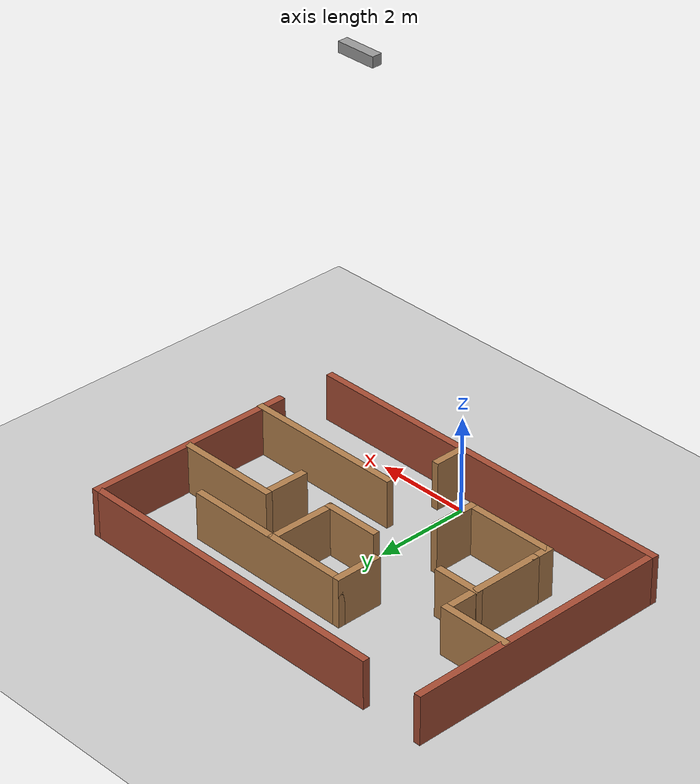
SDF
<sdf version="1.7">
 <world name="default">
  <light name="sun" type="directional">
   <pose>0 0 10 0 -0 0</pose>
   <diffuse>0.8 0.8 0.8 1</diffuse>
   <specular>0.2 0.2 0.2 1</specular>
   <attenuation>
    <range>1000</range>
    <constant>0.9</constant>
    <linear>0.01</linear>
    <quadratic>0.001</quadratic>
   </attenuation>
   <direction>-0.5 0.1 -0.9</direction>
   <spot><inner_angle>0</inner_angle><outer_angle>0</outer_angle><falloff>0</falloff></spot>
  </light>
  <model name="ground_plane">
   <static>1</static>
   <link name="link">
    <collision name="collision">
     <geometry><plane><normal>0 0 1</normal><size>100 100</size></plane></geometry>
     <surface><friction><ode><mu>100</mu><mu2>50</mu2></ode></friction></surface>
    </collision>
    <visual name="visual">
     <cast_shadows>0</cast_shadows>
     <geometry><plane><normal>0 0 1</normal><size>100 100</size></plane></geometry>
     <material>
      <script><uri>file://media/materials/scripts/gazebo.material</uri><name>Gazebo/Grey</name></script>
     </material>
    </visual>
   </link>
  </model>
  <gravity>0 0 -9.8</gravity>
  <magnetic_field>6e-06 2.3e-05 -4.2e-05</magnetic_field>
  <atmosphere type="adiabatic"/>
  <physics type="ode">
   <max_step_size>0.001</max_step_size>
   <real_time_factor>1</real_time_factor>
   <real_time_update_rate>1000</real_time_update_rate>
  </physics>
  <scene><ambient>0.4 0.4 0.4 1</ambient><background>0.7 0.7 0.7 1</background><shadows>1</shadows></scene>
  <audio><device>default</device></audio>
  <spherical_coordinates>
   <surface_model>EARTH_WGS84</surface_model>
   <latitude_deg>0</latitude_deg>
   <longitude_deg>0</longitude_deg>
   <elevation>0</elevation>
   <heading_deg>0</heading_deg>
  </spherical_coordinates>
  <model name="maze_world">
   <pose>-0.1335 2.402 0 0 -0 0</pose>
   <link name="Wall_0">
    <collision name="Wall_0_Collision">
     <geometry><box><size>8.25 0.15 1</size></box></geometry>
     <pose>0 0 0.5 0 -0 0</pose>
    </collision>
    <visual name="Wall_0_Visual">
     <pose>0 0 0.5 0 -0 0</pose>
     <geometry><box><size>8.25 0.15 1</size></box></geometry>
     <material>
      <script><uri>file://media/materials/scripts/gazebo.material</uri><name>Gazebo/Bricks</name></script>
      <ambient>1 1 1 1</ambient>
     </material>
     <meta><layer>0</layer></meta>
    </visual>
    <pose>-0.0465 -2.809 0 0 -0 0</pose>
   </link>
   <link name="Wall_10">
    <collision name="Wall_10_Collision">
     <geometry><box><size>1.5 0.15 1</size></box></geometry>
     <pose>0 0 0.5 0 -0 0</pose>
    </collision>
    <visual name="Wall_10_Visual">
     <pose>0 0 0.5 0 -0 0</pose>
     <geometry><box><size>1.5 0.15 1</size></box></geometry>
     <material>
      <script><uri>file://media/materials/scripts/gazebo.material</uri><name>Gazebo/Wood</name></script>
      <ambient>1 1 1 1</ambient>
     </material>
     <meta><layer>0</layer></meta>
    </visual>
    <pose>-3.3945 0.819 0 0 -0 0</pose>
   </link>
   <link name="Wall_11">
    <collision name="Wall_11_Collision">
     <geometry><box><size>2.25 0.15 1</size></box></geometry>
     <pose>0 0 0.5 0 -0 0</pose>
    </collision>
    <visual name="Wall_11_Visual">
     <pose>0 0 0.5 0 -0 0</pose>
     <geometry><box><size>2.25 0.15 1</size></box></geometry>
     <material>
      <script><uri>file://media/materials/scripts/gazebo.material</uri><name>Gazebo/Wood</name></script>
      <ambient>1 1 1 1</ambient>
     </material>
     <meta><layer>0</layer></meta>
    </visual>
    <pose>-2.7195 -0.231 0 0 -0 -1.5708</pose>
   </link>
   <link name="Wall_12">
    <collision name="Wall_12_Collision">
     <geometry><box><size>0.5 0.15 1</size></box></geometry>
     <pose>0 0 0.5 0 -0 0</pose>
    </collision>
    <visual name="Wall_12_Visual">
     <pose>0 0 0.5 0 -0 0</pose>
     <geometry><box><size>0.5 0.15 1</size></box></geometry>
     <material>
      <script><uri>file://media/materials/scripts/gazebo.material</uri><name>Gazebo/Wood</name></script>
      <ambient>1 1 1 1</ambient>
     </material>
     <meta><layer>0</layer></meta>
    </visual>
    <pose>-2.7195 -1.456 0 0 -0 -1.5708</pose>
   </link>
   <link name="Wall_13">
    <collision name="Wall_13_Collision">
     <geometry><box><size>2 0.15 1</size></box></geometry>
     <pose>0 0 0.5 0 -0 0</pose>
    </collision>
    <visual name="Wall_13_Visual">
     <pose>0 0 0.5 0 -0 0</pose>
     <geometry><box><size>2 0.15 1</size></box></geometry>
     <material>
      <script><uri>file://media/materials/scripts/gazebo.material</uri><name>Gazebo/Wood</name></script>
      <ambient>1 1 1 1</ambient>
     </material>
     <meta><layer>0</layer></meta>
    </visual>
    <pose>-1.7945 -1.631 0 0 -0 0</pose>
   </link>
   <link name="Wall_14">
    <collision name="Wall_14_Collision">
     <geometry><box><size>1 0.15 1</size></box></geometry>
     <pose>0 0 0.5 0 -0 0</pose>
    </collision>
    <visual name="Wall_14_Visual">
     <pose>0 0 0.5 0 -0 0</pose>
     <geometry><box><size>1 0.15 1</size></box></geometry>
     <material>
      <script><uri>file://media/materials/scripts/gazebo.material</uri><name>Gazebo/Wood</name></script>
      <ambient>1 1 1 1</ambient>
     </material>
     <meta><layer>0</layer></meta>
    </visual>
    <pose>-0.8695 -1.206 0 0 -0 1.5708</pose>
   </link>
   <link name="Wall_16">
    <collision name="Wall_16_Collision">
     <geometry><box><size>1.00048 0.15 1</size></box></geometry>
     <pose>0 0 0.5 0 -0 0</pose>
    </collision>
    <visual name="Wall_16_Visual">
     <pose>0 0 0.5 0 -0 0</pose>
     <geometry><box><size>1.00048 0.15 1</size></box></geometry>
     <material>
      <script><uri>file://media/materials/scripts/gazebo.material</uri><name>Gazebo/Wood</name></script>
      <ambient>1 1 1 1</ambient>
     </material>
     <meta><layer>0</layer></meta>
    </visual>
    <pose>-0.8455 1.135 0 0 -0 -1.5708</pose>
   </link>
   <link name="Wall_18">
    <collision name="Wall_18_Collision">
     <geometry><box><size>1 0.15 1</size></box></geometry>
     <pose>0 0 0.5 0 -0 0</pose>
    </collision>
    <visual name="Wall_18_Visual">
     <pose>0 0 0.5 0 -0 0</pose>
     <geometry><box><size>1 0.15 1</size></box></geometry>
     <material>
      <script><uri>file://media/materials/scripts/gazebo.material</uri><name>Gazebo/Wood</name></script>
      <ambient>1 1 1 1</ambient>
     </material>
     <meta><layer>0</layer></meta>
    </visual>
    <pose>-2.3025 0.125 0 0 -0 0</pose>
   </link>
   <link name="Wall_21">
    <collision name="Wall_21_Collision">
     <geometry><box><size>1.5 0.15 1</size></box></geometry>
     <pose>0 0 0.5 0 -0 0</pose>
    </collision>
    <visual name="Wall_21_Visual">
     <pose>0 0 0.5 0 -0 0</pose>
     <geometry><box><size>1.5 0.15 1</size></box></geometry>
     <material>
      <script><uri>file://media/materials/scripts/gazebo.material</uri><name>Gazebo/Wood</name></script>
      <ambient>1 1 1 1</ambient>
     </material>
     <meta><layer>0</layer></meta>
    </visual>
    <pose>0.8345 0.861 0 0 -0 -1.5708</pose>
   </link>
   <link name="Wall_22">
    <collision name="Wall_22_Collision">
     <geometry><box><size>1.25 0.15 1</size></box></geometry>
     <pose>0 0 0.5 0 -0 0</pose>
    </collision>
    <visual name="Wall_22_Visual">
     <pose>0 0 0.5 0 -0 0</pose>
     <geometry><box><size>1.25 0.15 1</size></box></geometry>
     <material>
      <script><uri>file://media/materials/scripts/gazebo.material</uri><name>Gazebo/Wood</name></script>
      <ambient>1 1 1 1</ambient>
     </material>
     <meta><layer>0</layer></meta>
    </visual>
    <pose>0.2845 0.186 0 0 -0 3.14159</pose>
   </link>
   <link name="Wall_24">
    <collision name="Wall_24_Collision">
     <geometry><box><size>3.5 0.15 1</size></box></geometry>
     <pose>0 0 0.5 0 -0 0</pose>
    </collision>
    <visual name="Wall_24_Visual">
     <pose>0 0 0.5 0 -0 0</pose>
     <geometry><box><size>3.5 0.15 1</size></box></geometry>
     <material>
      <script><uri>file://media/materials/scripts/gazebo.material</uri><name>Gazebo/Wood</name></script>
      <ambient>1 1 1 1</ambient>
     </material>
     <meta><layer>0</layer></meta>
    </visual>
    <pose>2.4215 -1.124 0 0 -0 3.14159</pose>
   </link>
   <link name="Wall_26">
    <collision name="Wall_26_Collision">
     <geometry><box><size>2.25 0.15 1</size></box></geometry>
     <pose>0 0 0.5 0 -0 0</pose>
    </collision>
    <visual name="Wall_26_Visual">
     <pose>0 0 0.5 0 -0 0</pose>
     <geometry><box><size>2.25 0.15 1</size></box></geometry>
     <material>
      <script><uri>file://media/materials/scripts/gazebo.material</uri><name>Gazebo/Wood</name></script>
      <ambient>1 1 1 1</ambient>
     </material>
     <meta><layer>0</layer></meta>
    </visual>
    <pose>2.9995 0.704 0 0 -0 3.14159</pose>
   </link>
   <link name="Wall_27">
    <collision name="Wall_27_Collision">
     <geometry><box><size>1 0.15 1</size></box></geometry>
     <pose>0 0 0.5 0 -0 0</pose>
    </collision>
    <visual name="Wall_27_Visual">
     <pose>0 0 0.5 0 -0 0</pose>
     <geometry><box><size>1 0.15 1</size></box></geometry>
     <material>
      <script><uri>file://media/materials/scripts/gazebo.material</uri><name>Gazebo/Wood</name></script>
      <ambient>1 1 1 1</ambient>
     </material>
     <meta><layer>0</layer></meta>
    </visual>
    <pose>1.9495 0.279 0 0 -0 -1.5708</pose>
   </link>
   <link name="Wall_29">
    <collision name="Wall_29_Collision">
     <geometry><box><size>0.75 0.15 1</size></box></geometry>
     <pose>0 0 0.5 0 -0 0</pose>
    </collision>
    <visual name="Wall_29_Visual">
     <pose>0 0 0.5 0 -0 0</pose>
     <geometry><box><size>0.75 0.15 1</size></box></geometry>
     <material>
      <script><uri>file://media/materials/scripts/gazebo.material</uri><name>Gazebo/Wood</name></script>
      <ambient>1 1 1 1</ambient>
     </material>
     <meta><layer>0</layer></meta>
    </visual>
    <pose>0.5335 -2.489 0 0 -0 1.5708</pose>
   </link>
   <link name="Wall_3">
    <collision name="Wall_3_Collision">
     <geometry><box><size>5.75 0.15 1</size></box></geometry>
     <pose>0 0 0.5 0 -0 0</pose>
    </collision>
    <visual name="Wall_3_Visual">
     <pose>0 0 0.5 0 -0 0</pose>
     <geometry><box><size>5.75 0.15 1</size></box></geometry>
     <material>
      <script><uri>file://media/materials/scripts/gazebo.material</uri><name>Gazebo/Bricks</name></script>
      <ambient>1 1 1 1</ambient>
     </material>
     <meta><layer>0</layer></meta>
    </visual>
    <pose>-4.0965 -0.009 0 0 -0 1.5708</pose>
   </link>
   <link name="Wall_5">
    <collision name="Wall_5_Collision">
     <geometry><box><size>7 0.15 1</size></box></geometry>
     <pose>0 0 0.5 0 -0 0</pose>
    </collision>
    <visual name="Wall_5_Visual">
     <pose>0 0 0.5 0 -0 0</pose>
     <geometry><box><size>7 0.15 1</size></box></geometry>
     <material>
      <script><uri>file://media/materials/scripts/gazebo.material</uri><name>Gazebo/Bricks</name></script>
      <ambient>1 1 1 1</ambient>
     </material>
     <meta><layer>0</layer></meta>
    </visual>
    <pose>0.6515 2.809 0 0 -0 0</pose>
   </link>
   <link name="Wall_6">
    <collision name="Wall_6_Collision">
     <geometry><box><size>4.5 0.15 1</size></box></geometry>
     <pose>0 0 0.5 0 -0 0</pose>
    </collision>
    <visual name="Wall_6_Visual">
     <pose>0 0 0.5 0 -0 0</pose>
     <geometry><box><size>4.5 0.15 1</size></box></geometry>
     <material>
      <script><uri>file://media/materials/scripts/gazebo.material</uri><name>Gazebo/Bricks</name></script>
      <ambient>1 1 1 1</ambient>
     </material>
     <meta><layer>0</layer></meta>
    </visual>
    <pose>4.0765 0.634 0 0 -0 -1.5708</pose>
   </link>
   <link name="Wall_8">
    <collision name="Wall_8_Collision">
     <geometry><box><size>3.704 0.15 1</size></box></geometry>
     <pose>0 0 0.5 0 -0 0</pose>
    </collision>
    <visual name="Wall_8_Visual">
     <pose>0 0 0.5 0 -0 0</pose>
     <geometry><box><size>3.704 0.15 1</size></box></geometry>
     <material>
      <script><uri>file://media/materials/scripts/gazebo.material</uri><name>Gazebo/Wood</name></script>
      <ambient>1 1 1 1</ambient>
     </material>
     <meta><layer>0</layer></meta>
    </visual>
    <pose>0.9315 1.56 0 0 -0 3.14159</pose>
   </link>
   <static>1</static>
  </model>
  <model name="maze_world_0">
   <link name="topcamera">
    <inertial>
     <mass>1</mass>
     <inertia>
      <ixx>0.166667</ixx>
      <ixy>0</ixy>
      <ixz>0</ixz>
      <iyy>0.166667</iyy>
      <iyz>0</iyz>
      <izz>0.166667</izz>
     </inertia>
    </inertial>
    <pose>-0 0 -1.0e-05 0 -0 0</pose>
    <visual name="visual">
     <geometry><box><size>0.8 0.2 0.2</size></box></geometry>
     <material>
      <lighting>1</lighting>
      <script><uri>file://media/materials/scripts/gazebo.material</uri><name>Gazebo/Grey</name></script>
      <shader type="pixel"><normal_map>__default__</normal_map></shader>
      <ambient>0.3 0.3 0.3 1</ambient>
      <diffuse>0.7 0.7 0.7 1</diffuse>
      <specular>0.01 0.01 0.01 1</specular>
      <emissive>0 0 0 1</emissive>
     </material>
    </visual>
    <collision name="collision">
     <geometry><box><size>0.8 0.2 0.2</size></box></geometry>
     <surface>
      <friction>
       <ode><mu>1</mu><mu2>1</mu2><fdir1>0 0 0</fdir1><slip1>0</slip1><slip2>0</slip2></ode>
       <torsional>
        <coefficient>1</coefficient>
        <patch_radius>0</patch_radius>
        <surface_radius>0</surface_radius>
        <use_patch_radius>1</use_patch_radius>
        <ode><slip>0</slip></ode>
       </torsional>
      </friction>
      <bounce><restitution_coefficient>0</restitution_coefficient><threshold>1e+06</threshold></bounce>
      <contact>
       <collide_without_contact>0</collide_without_contact>
       <collide_without_contact_bitmask>1</collide_without_contact_bitmask>
       <collide_bitmask>1</collide_bitmask>
       <ode>
        <soft_cfm>0</soft_cfm>
        <soft_erp>0.2</soft_erp>
        <kp>1e+13</kp>
        <kd>1</kd>
        <max_vel>0.01</max_vel>
        <min_depth>0</min_depth>
       </ode>
       <bullet>
        <split_impulse>1</split_impulse>
        <split_impulse_penetration_threshold>-0.01</split_impulse_penetration_threshold>
        <soft_cfm>0</soft_cfm>
        <soft_erp>0.2</soft_erp>
        <kp>1e+13</kp>
        <kd>1</kd>
       </bullet>
      </contact>
     </surface>
    </collision>
    <sensor name="topcamera" type="camera">
     <pose>0 0 0 0 1.57 1.57</pose>
     <update_rate>30</update_rate>
     <visualize>1</visualize>
     <camera name="head">
      <horizontal_fov>1.0856</horizontal_fov>
      <image><width>1280</width><height>720</height><format>R8G8B8</format></image>
      <clip><near>0.03</near><far>100</far></clip>
      <noise><type>gaussian</type><mean>0</mean><stddev>0.007</stddev></noise>
     </camera>
     <plugin name="camera_controller" filename="libgazebo_ros_camera.so">
      <alwaysOn>1</alwaysOn>
      <updateRate>0.0</updateRate>
      <cameraName>/topcamera</cameraName>
      <imageTopicName>image_raw</imageTopicName>
      <cameraInfoTopicName>camera_info</cameraInfoTopicName>
      <frameName>camera_link</frameName>
      <hackBaseline>0.07</hackBaseline>
      <distortionK1>0.0</distortionK1>
      <distortionK2>0.0</distortionK2>
      <distortionK3>0.0</distortionK3>
      <distortionT1>0.0</distortionT1>
      <distortionT2>0.0</distortionT2>
     </plugin>
    </sensor>
   </link>
   <static>1</static>
   <pose>0.039716 2.47328 10.0311 0 -0 0</pose>
  </model>
 </world>
</sdf>
